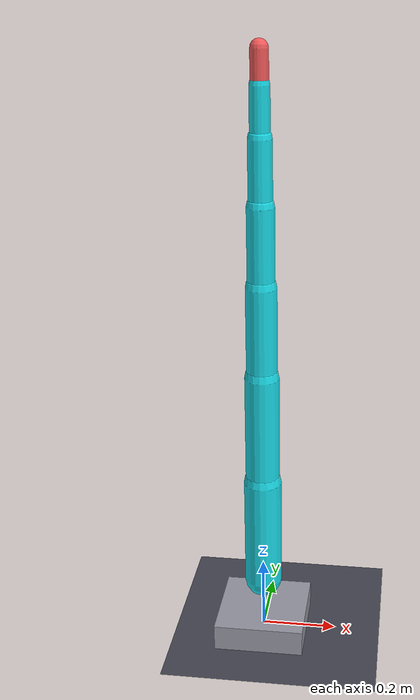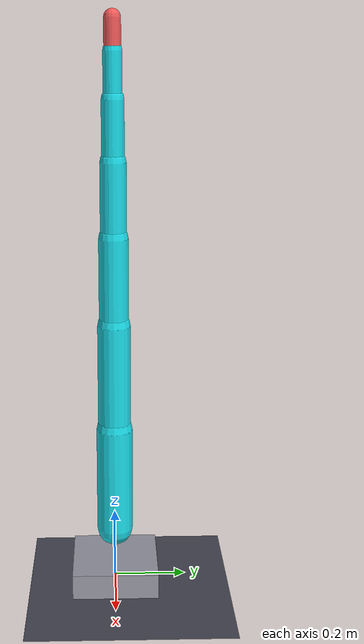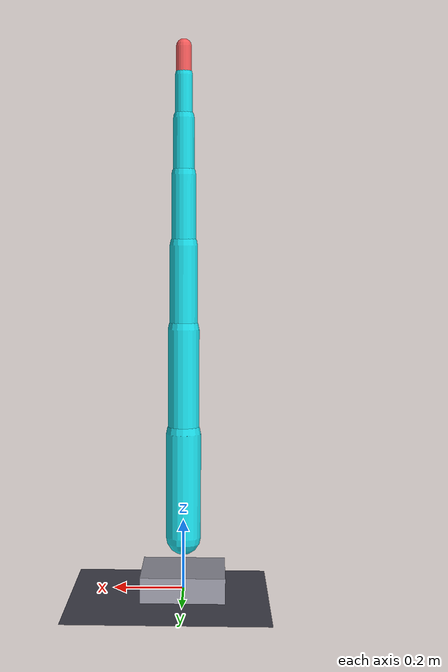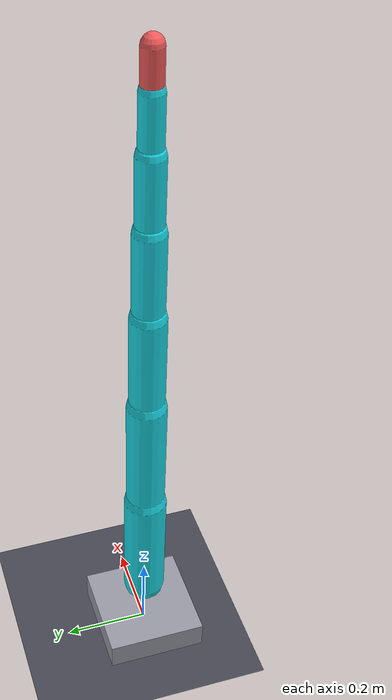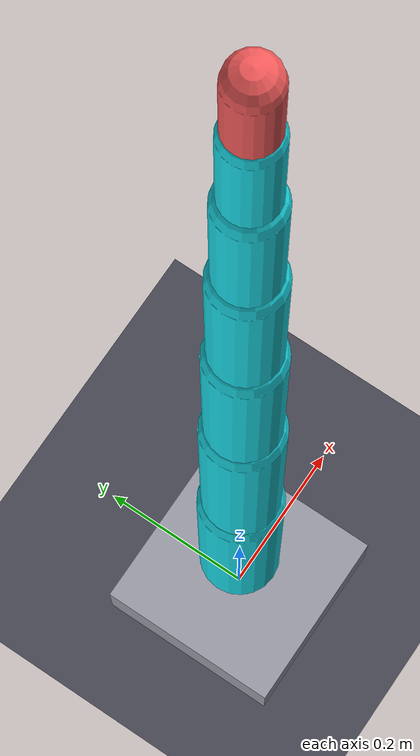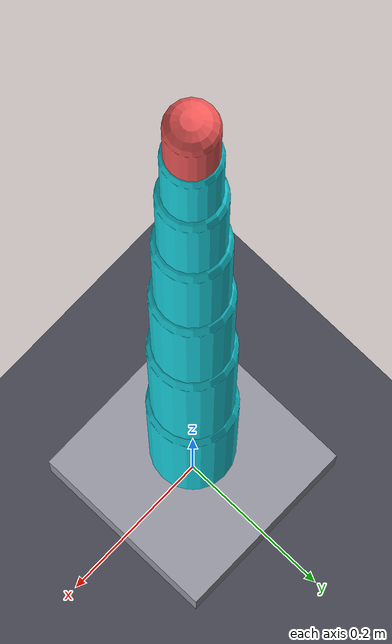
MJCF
<mujoco model="dummy_arm">
  <compiler angle="radian" autolimits="true"/>
  <option timestep="0.002" gravity="0 0 -9.81" integrator="RK4"/>

  <asset>
    <texture type="skybox" builtin="gradient" rgb1="0.15 0.15 0.2" rgb2="0.25 0.25 0.35" width="512" height="512"/>
    <texture name="grid" type="2d" builtin="checker" rgb1="0.25 0.25 0.3" rgb2="0.3 0.3 0.35" width="512" height="512"/>
    <material name="grid_mat" texture="grid" texrepeat="8 8" reflectance="0.1"/>
    <material name="base_mat" rgba="0.6 0.6 0.65 1"/>
    <material name="link_mat" rgba="0.1 0.85 0.9 1"/>
    <material name="end_mat" rgba="0.95 0.35 0.35 1"/>
  </asset>

  <worldbody>
    <light directional="true" diffuse="0.8 0.8 0.8" specular="0.3 0.3 0.3" pos="2 2 5" dir="-0.3 -0.3 -0.8"/>
    <light directional="true" diffuse="0.5 0.5 0.55" specular="0.15 0.15 0.15" pos="-2 -2 4" dir="0.25 0.25 -0.8"/>

    <geom name="floor" type="plane" size="10 10 0.1" material="grid_mat" pos="0 0 -0.01"/>

    <body name="base_link" pos="0 0 0">
      <geom name="base_geom" type="box" size="0.12 0.12 0.06" material="base_mat"/>

      <body name="l1" pos="0 0 0.15">
        <joint name="j1" type="hinge" axis="0 0 1" range="-3.14 3.14" damping="0.3" armature="0.01"/>
        <geom name="l1_geom" type="capsule" size="0.05" fromto="0 0 0 0 0 0.3" material="link_mat"/>

        <body name="l2" pos="0 0 0.3">
          <joint name="j2" type="hinge" axis="0 1 0" range="-2.0 2.0" damping="0.3" armature="0.01"/>
          <geom name="l2_geom" type="capsule" size="0.045" fromto="0 0 0 0 0 0.3" material="link_mat"/>

          <body name="l3" pos="0 0 0.3">
            <joint name="j3" type="hinge" axis="0 1 0" range="-2.0 2.0" damping="0.3" armature="0.01"/>
            <geom name="l3_geom" type="capsule" size="0.04" fromto="0 0 0 0 0 0.24" material="link_mat"/>

            <body name="l4" pos="0 0 0.24">
              <joint name="j4" type="hinge" axis="1 0 0" range="-1.5 1.5" damping="0.3" armature="0.01"/>
              <geom name="l4_geom" type="capsule" size="0.035" fromto="0 0 0 0 0 0.2" material="link_mat"/>

              <body name="l5" pos="0 0 0.2">
                <joint name="j5" type="hinge" axis="0 1 0" range="-1.5 1.5" damping="0.3" armature="0.01"/>
                <geom name="l5_geom" type="capsule" size="0.03" fromto="0 0 0 0 0 0.16" material="link_mat"/>

                <body name="l6" pos="0 0 0.16">
                  <joint name="j6" type="hinge" axis="1 0 0" range="-1.5 1.5" damping="0.3" armature="0.01"/>
                  <geom name="l6_geom" type="capsule" size="0.025" fromto="0 0 0 0 0 0.12" material="link_mat"/>

                  <body name="l7" pos="0 0 0.12">
                    <joint name="j7" type="hinge" axis="0 1 0" range="-1.5 1.5" damping="0.3" armature="0.01"/>
                    <geom name="l7_geom" type="capsule" size="0.022" fromto="0 0 0 0 0 0.08" material="end_mat"/>
                    <site name="ee" pos="0 0 0.08" size="0.02"/>
                  </body>
                </body>
              </body>
            </body>
          </body>
        </body>
      </body>
    </body>
  </worldbody>
</mujoco>
